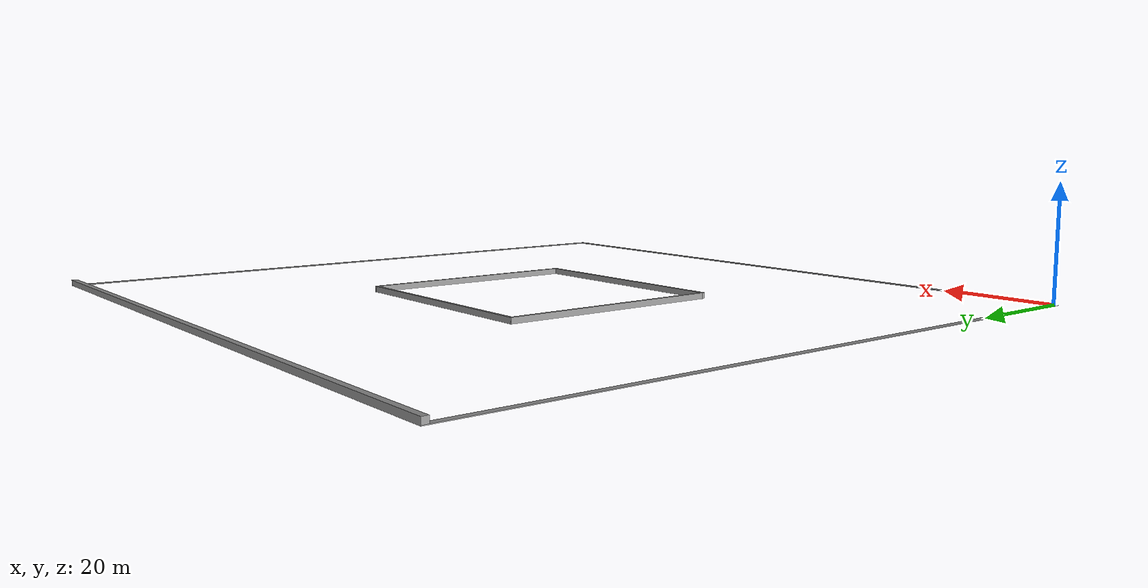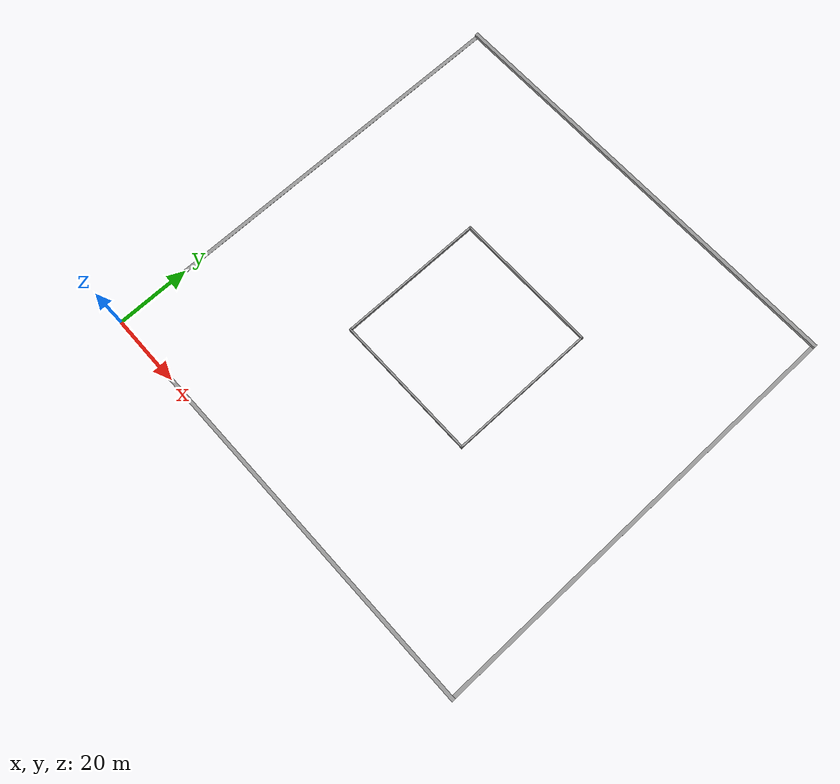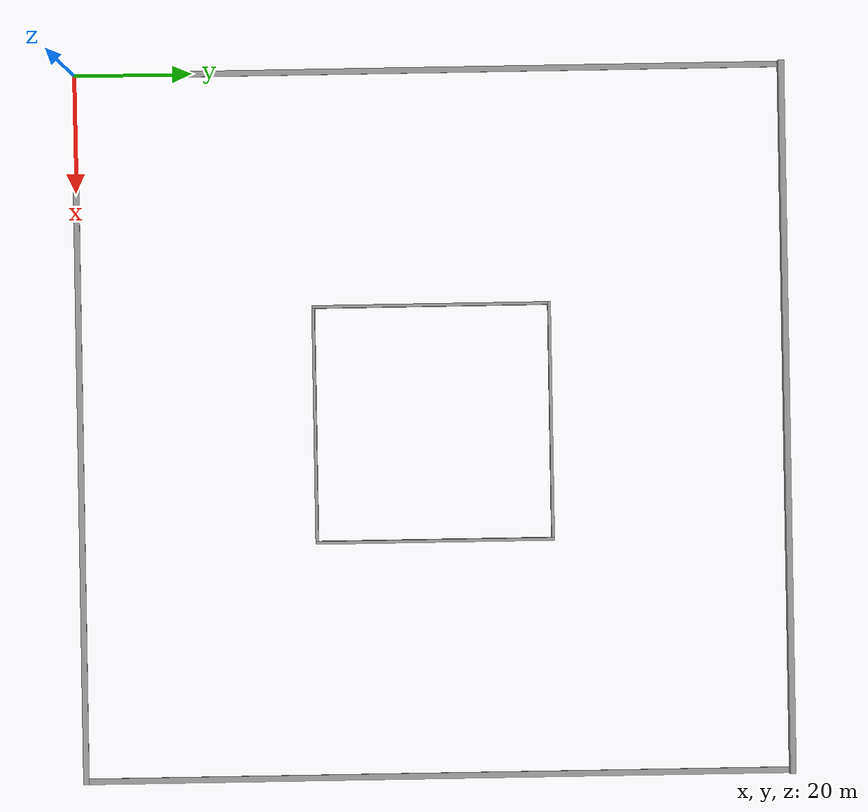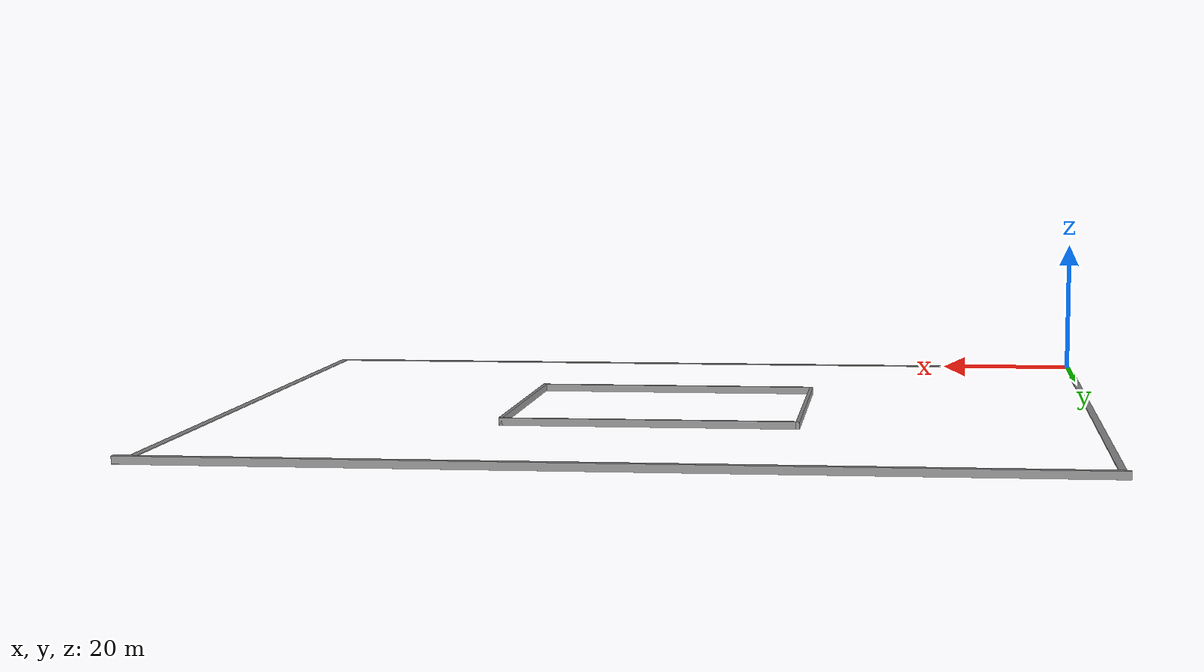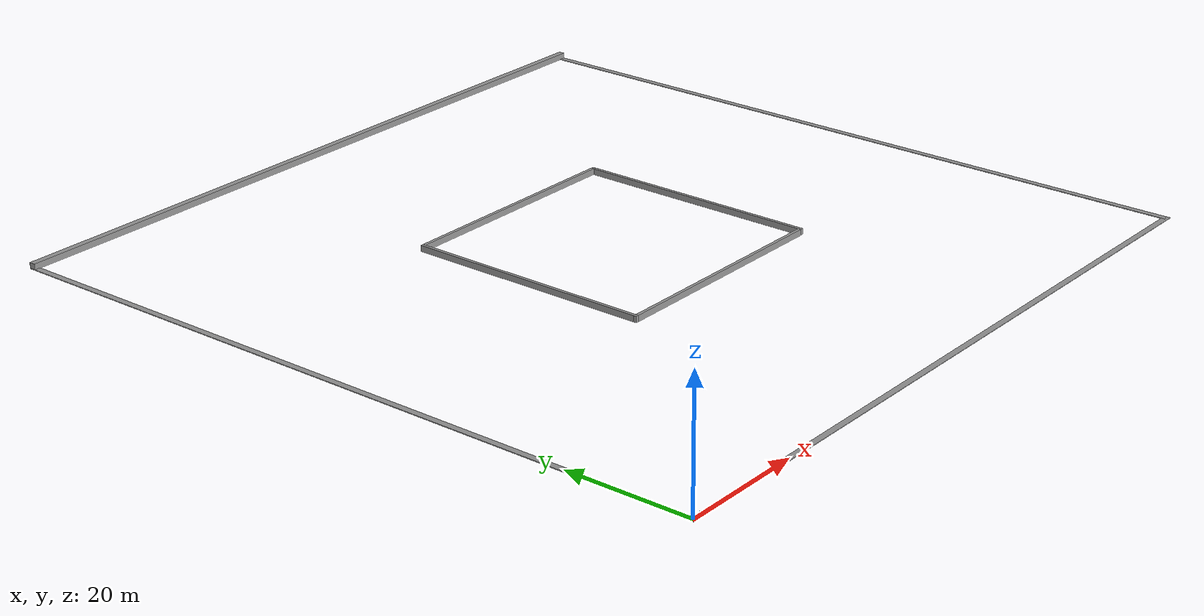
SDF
<?xml version='1.0'?>
<sdf version='1.6'>
  <model name='FlyField2'>
    <pose frame=''>60 60 0 0 -0 0</pose>
    <link name='Wall_1'>
      <collision name='Wall_1_Collision'>
        <geometry>
          <box>
            <size>121 1 0.1</size>
          </box>
        </geometry>
        <pose frame=''>0 0 0.05 0 -0 0</pose>
      </collision>
      <visual name='Wall_1_Visual'>
        <pose frame=''>0 0 0.05 0 -0 0</pose>
        <geometry>
          <box>
            <size>121 1 0.1</size>
          </box>
        </geometry>
        <material>
          <script>
            <uri>file://media/materials/scripts/gazebo.material</uri>
            <name>Gazebo/Grey</name>
          </script>
          <ambient>1 1 1 1</ambient>
        </material>
        <meta>
          <layer>0</layer>
        </meta>
      </visual>
      <pose frame=''>0 -60 0 0 -0 0</pose>
    </link>
    <link name='Wall_24'>
      <collision name='Wall_24_Collision'>
        <geometry>
          <box>
            <size>40.5 0.5 1</size>
          </box>
        </geometry>
        <pose frame=''>0 0 0.5 0 -0 0</pose>
      </collision>
      <visual name='Wall_24_Visual'>
        <pose frame=''>0 0 0.5 0 -0 0</pose>
        <geometry>
          <box>
            <size>40.5 0.5 1</size>
          </box>
        </geometry>
        <material>
          <script>
            <uri>file://media/materials/scripts/gazebo.material</uri>
            <name>Gazebo/Grey</name>
          </script>
          <ambient>1 1 1 1</ambient>
        </material>
        <meta>
          <layer>0</layer>
        </meta>
      </visual>
      <pose frame=''>20 0 0 0 -0 1.5708</pose>
    </link>
    <link name='Wall_26'>
      <collision name='Wall_26_Collision'>
        <geometry>
          <box>
            <size>40.5 0.5 1</size>
          </box>
        </geometry>
        <pose frame=''>0 0 0.5 0 -0 0</pose>
      </collision>
      <visual name='Wall_26_Visual'>
        <pose frame=''>0 0 0.5 0 -0 0</pose>
        <geometry>
          <box>
            <size>40.5 0.5 1</size>
          </box>
        </geometry>
        <material>
          <script>
            <uri>file://media/materials/scripts/gazebo.material</uri>
            <name>Gazebo/Grey</name>
          </script>
          <ambient>1 1 1 1</ambient>
        </material>
        <meta>
          <layer>0</layer>
        </meta>
      </visual>
      <pose frame=''>0 20 0 0 -0 0</pose>
    </link>
    <link name='Wall_3'>
      <collision name='Wall_3_Collision'>
        <geometry>
          <box>
            <size>121 1 0.1</size>
          </box>
        </geometry>
        <pose frame=''>0 0 0.05 0 -0 0</pose>
      </collision>
      <visual name='Wall_3_Visual'>
        <pose frame=''>0 0 0.05 0 -0 0</pose>
        <geometry>
          <box>
            <size>121 1 0.1</size>
          </box>
        </geometry>
        <material>
          <script>
            <uri>file://media/materials/scripts/gazebo.material</uri>
            <name>Gazebo/Grey</name>
          </script>
          <ambient>1 1 1 1</ambient>
        </material>
        <meta>
          <layer>0</layer>
        </meta>
      </visual>
      <pose frame=''>-60 0 0 0 -0 1.5708</pose>
    </link>
    <link name='Wall_34'>
      <collision name='Wall_34_Collision'>
        <geometry>
          <box>
            <size>40.5 0.5 1</size>
          </box>
        </geometry>
        <pose frame=''>0 0 0.5 0 -0 0</pose>
      </collision>
      <visual name='Wall_34_Visual'>
        <pose frame=''>0 0 0.5 0 -0 0</pose>
        <geometry>
          <box>
            <size>40.5 0.5 1</size>
          </box>
        </geometry>
        <material>
          <script>
            <uri>file://media/materials/scripts/gazebo.material</uri>
            <name>Gazebo/Grey</name>
          </script>
          <ambient>1 1 1 1</ambient>
        </material>
        <meta>
          <layer>0</layer>
        </meta>
      </visual>
      <pose frame=''>-20 0 0 0 -0 1.5708</pose>
    </link>
    <link name='Wall_7'>
      <collision name='Wall_7_Collision'>
        <geometry>
          <box>
            <size>40.5 0.5 1</size>
          </box>
        </geometry>
        <pose frame=''>0 0 0.5 0 -0 0</pose>
      </collision>
      <visual name='Wall_7_Visual'>
        <pose frame=''>0 0 0.5 0 -0 0</pose>
        <geometry>
          <box>
            <size>40.5 0.5 1</size>
          </box>
        </geometry>
        <material>
          <script>
            <uri>file://media/materials/scripts/gazebo.material</uri>
            <name>Gazebo/Grey</name>
          </script>
          <ambient>1 1 1 1</ambient>
        </material>
        <meta>
          <layer>0</layer>
        </meta>
      </visual>
      <pose frame=''>0 -20 0 0 -0 0</pose>
    </link>
    <link name='Wall_91'>
      <collision name='Wall_91_Collision'>
        <geometry>
          <box>
            <size>121 1 0.1</size>
          </box>
        </geometry>
        <pose frame=''>0 0 0.05 0 -0 0</pose>
      </collision>
      <visual name='Wall_91_Visual'>
        <pose frame=''>0 0 0.05 0 -0 0</pose>
        <geometry>
          <box>
            <size>121 1 0.1</size>
          </box>
        </geometry>
        <material>
          <script>
            <uri>file://media/materials/scripts/gazebo.material</uri>
            <name>Gazebo/Grey</name>
          </script>
          <ambient>1 1 1 1</ambient>
        </material>
        <meta>
          <layer>0</layer>
        </meta>
      </visual>
      <pose frame=''>60 0 0 0 -0 1.5708</pose>
    </link>
    <link name='Wall_94'>
      <collision name='Wall_94_Collision'>
        <geometry>
          <box>
            <size>121 1 1</size>
          </box>
        </geometry>
        <pose frame=''>0 0 0.5 0 -0 0</pose>
      </collision>
      <visual name='Wall_94_Visual'>
        <pose frame=''>0 0 0.5 0 -0 0</pose>
        <geometry>
          <box>
            <size>121 1 1</size>
          </box>
        </geometry>
        <material>
          <script>
            <uri>file://media/materials/scripts/gazebo.material</uri>
            <name>Gazebo/Grey</name>
          </script>
          <ambient>1 1 1 1</ambient>
        </material>
        <meta>
          <layer>0</layer>
        </meta>
      </visual>
      <pose frame=''>0 60 0 0 -0 3.14159</pose>
    </link>
    <static>1</static>
  </model>
</sdf>
